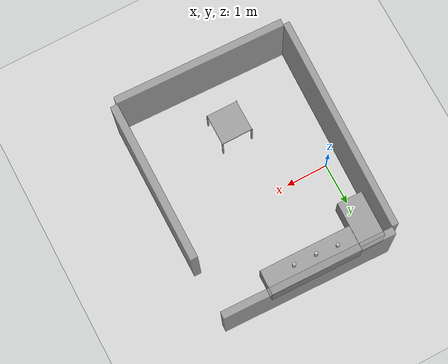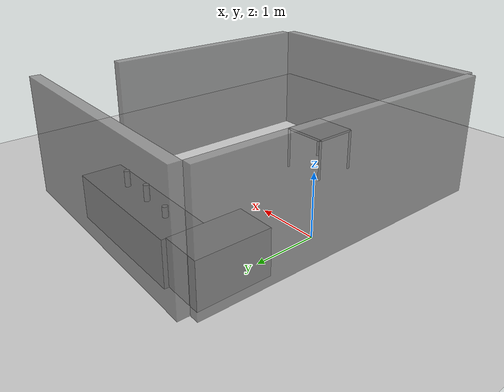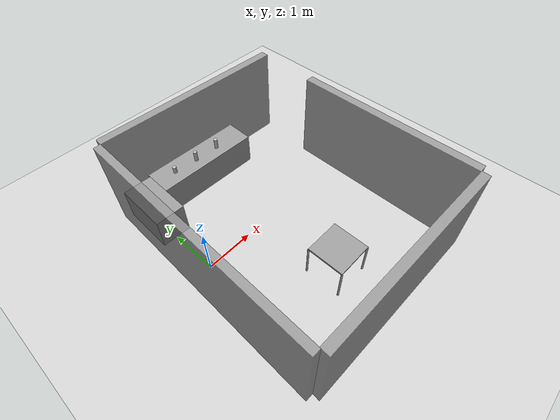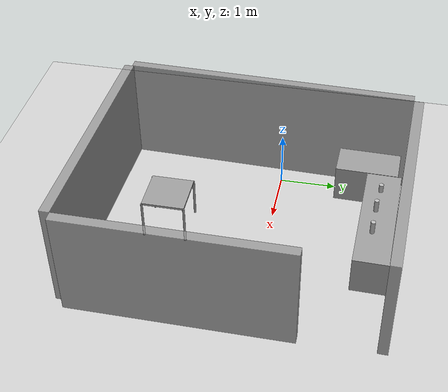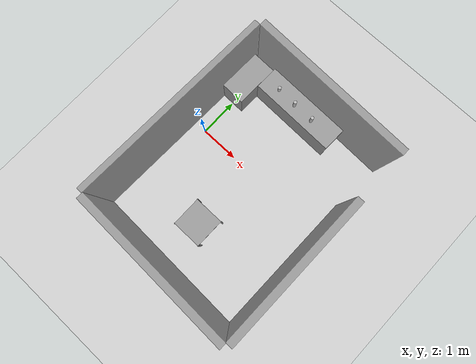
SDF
<sdf version="1.7">
 <world name="default">
  <physics type="ode">
   <ode>
    <solver>
     <type>quick</type>
     <iters>50</iters>
     <sor>1.4</sor>
     <use_dynamic_moi_rescaling>0</use_dynamic_moi_rescaling>
    </solver>
    <constraints>
     <cfm>0</cfm>
     <erp>0.2</erp>
     <contact_max_correcting_vel>100</contact_max_correcting_vel>
     <contact_surface_layer>0</contact_surface_layer>
    </constraints>
   </ode>
   <real_time_update_rate>1000</real_time_update_rate>
   <max_step_size>0.001</max_step_size>
   <real_time_factor>1</real_time_factor>
  </physics>
  <light name="sun" type="directional">
   <pose>0 0 8 0 -0 0</pose>
   <diffuse>0.8 0.8 0.8 1</diffuse>
   <specular>0.2 0.2 0.2 1</specular>
   <attenuation>
    <range>1000</range>
    <constant>0.9</constant>
    <linear>0.01</linear>
    <quadratic>0.001</quadratic>
   </attenuation>
   <direction>-0.5 0.1 -0.9</direction>
   <spot><inner_angle>0</inner_angle><outer_angle>0</outer_angle><falloff>0</falloff></spot>
  </light>
  <light name="ceiling_light" type="point">
   <pose>1.57075 -1.6124 1 0 -0 0</pose>
   <diffuse>0.5 0.5 0.5 1</diffuse>
   <specular>0.1 0.1 0.1 1</specular>
   <attenuation>
    <range>20</range>
    <constant>0.25</constant>
    <linear>0.01</linear>
    <quadratic>0.001</quadratic>
   </attenuation>
   <cast_shadows>0</cast_shadows>
   <direction>0 0 -1</direction>
  </light>
  <model name="ground_plane">
   <static>1</static>
   <link name="link">
    <collision name="collision">
     <geometry><plane><normal>0 0 1</normal><size>100 100</size></plane></geometry>
     <surface>
      <contact><collide_bitmask>65535</collide_bitmask></contact>
      <friction><ode><mu>100</mu><mu2>50</mu2></ode></friction>
     </surface>
    </collision>
    <visual name="visual">
     <cast_shadows>0</cast_shadows>
     <geometry><plane><normal>0 0 1</normal><size>100 100</size></plane></geometry>
     <material>
      <script><uri>file://media/materials/scripts/gazebo.material</uri><name>Gazebo/Grey</name></script>
     </material>
    </visual>
   </link>
  </model>
  <gravity>0 0 -9.81</gravity>
  <magnetic_field>6e-06 2.3e-05 -4.2e-05</magnetic_field>
  <atmosphere type="adiabatic"/>
  <scene><ambient>0.4 0.4 0.4 1</ambient><background>0.7 0.7 0.7 1</background><shadows>1</shadows></scene>
  <spherical_coordinates>
   <surface_model>EARTH_WGS84</surface_model>
   <latitude_deg>0</latitude_deg>
   <longitude_deg>0</longitude_deg>
   <elevation>0</elevation>
   <heading_deg>0</heading_deg>
  </spherical_coordinates>
  <model name="wall_north">
   <link name="link">
    <collision name="collision"><geometry><box><size>4.06296 0.169561 1.93007</size></box></geometry></collision>
    <gravity>0</gravity>
    <inertial>
     <mass>1</mass>
     <inertia>
      <ixx>0.166667</ixx>
      <ixy>0</ixy>
      <ixz>0</ixz>
      <iyy>0.166667</iyy>
      <iyz>0</iyz>
      <izz>0.166667</izz>
     </inertia>
    </inertial>
    <visual name="visual">
     <geometry><box><size>4.06296 0.169561 1.93007</size></box></geometry>
     <material>
      <script><name>Gazebo/Grey</name><uri>file://media/materials/scripts/gazebo.material</uri></script>
     </material>
     <transparency>0.15</transparency>
    </visual>
   </link>
   <pose>1.62874 -2.988 0.964658 6e-06 -0.000187 -0.029134</pose>
   <static>1</static>
  </model>
  <model name="wall_east">
   <link name="link">
    <collision name="collision"><geometry><box><size>0.144178 5.10072 1.93634</size></box></geometry></collision>
    <gravity>0</gravity>
    <inertial>
     <mass>1.42401</mass>
     <inertia><ixx>3.53234</ixx><ixy>0</ixy><ixz>0</ixz><iyy>0.447399</iyy><iyz>0</iyz><izz>3.08987</izz></inertia>
    </inertial>
    <visual name="visual">
     <geometry><box><size>0.144178 5.10072 1.93634</size></box></geometry>
     <material>
      <script><name>Gazebo/Grey</name><uri>file://media/materials/scripts/gazebo.material</uri></script>
     </material>
     <transparency>0.15</transparency>
    </visual>
   </link>
   <pose>-0.409741 -0.318763 0.966801 -0.000537 -1.4e-05 -0.0256</pose>
   <static>1</static>
  </model>
  <model name="wall_south">
   <link name="link">
    <collision name="collision"><geometry><box><size>4.06296 0.169561 1.93007</size></box></geometry></collision>
    <gravity>0</gravity>
    <inertial>
     <mass>1</mass>
     <inertia>
      <ixx>0.166667</ixx>
      <ixy>0</ixy>
      <ixz>0</ixz>
      <iyy>0.166667</iyy>
      <iyz>0</iyz>
      <izz>0.166667</izz>
     </inertia>
    </inertial>
    <visual name="visual">
     <geometry><box><size>4.06296 0.169561 1.93007</size></box></geometry>
     <material>
      <script><name>Gazebo/Grey</name><uri>file://media/materials/scripts/gazebo.material</uri></script>
     </material>
     <transparency>0.15</transparency>
    </visual>
   </link>
   <pose>1.76491 2.25747 0.964658 6e-06 -0.000187 -0.029134</pose>
   <static>1</static>
  </model>
  <model name="wall_west">
   <link name="link">
    <collision name="collision"><geometry><box><size>0.169301 3.81388 1.92589</size></box></geometry></collision>
    <gravity>0</gravity>
    <inertial>
     <mass>1</mass>
     <inertia>
      <ixx>0.166667</ixx>
      <ixy>0</ixy>
      <ixz>0</ixz>
      <iyy>0.166667</iyy>
      <iyz>0</iyz>
      <izz>0.166667</izz>
     </inertia>
    </inertial>
    <visual name="visual">
     <geometry><box><size>0.169301 3.81388 1.92589</size></box></geometry>
     <material>
      <script><name>Gazebo/Grey</name><uri>file://media/materials/scripts/gazebo.material</uri></script>
     </material>
     <transparency>0.15</transparency>
    </visual>
   </link>
   <pose>3.74483 -1.0514 0.962688 0.000135 4e-06 -0.004423</pose>
   <static>1</static>
  </model>
  <model name="clearing_table">
   <pose>0.018131 1.58035 0.34748 8.8e-05 -0.000457 -1.591</pose>
   <link name="link">
    <inertial>
     <mass>1</mass>
     <inertia>
      <ixx>0.166667</ixx>
      <ixy>0</ixy>
      <ixz>0</ixz>
      <iyy>0.166667</iyy>
      <iyz>0</iyz>
      <izz>0.166667</izz>
     </inertia>
    </inertial>
    <collision name="collision"><geometry><box><size>1.10998 0.608258 0.693943</size></box></geometry></collision>
    <visual name="visual">
     <geometry><box><size>1.10998 0.608258 0.693943</size></box></geometry>
     <material>
      <script><name>Gazebo/Grey</name><uri>file://media/materials/scripts/gazebo.material</uri></script>
     </material>
    </visual>
   </link>
  </model>
  <model name="dining_table">
   <static>1</static>
   <link name="link">
    <collision name="surface">
     <pose>0 0 0.72 0 -0 0</pose>
     <geometry><box><size>0.75 0.75 0.04</size></box></geometry>
    </collision>
    <visual name="visual1">
     <pose>0 0 0.72 0 -0 0</pose>
     <geometry><box><size>0.75 0.75 0.04</size></box></geometry>
     <material>
      <script><uri>file://media/materials/scripts/gazebo.material</uri><name>Gazebo/Grey</name></script>
     </material>
    </visual>
    <collision name="front_left_leg">
     <pose>0.37 0.37 0.36 0 -0 0</pose>
     <geometry><cylinder><radius>0.02</radius><length>0.72</length></cylinder></geometry>
    </collision>
    <visual name="front_left_leg">
     <pose>0.37 0.37 0.36 0 -0 0</pose>
     <geometry><cylinder><radius>0.02</radius><length>0.72</length></cylinder></geometry>
     <material>
      <script><uri>file://media/materials/scripts/gazebo.material</uri><name>Gazebo/Grey</name></script>
     </material>
    </visual>
    <collision name="front_right_leg">
     <pose>0.37 -0.37 0.36 0 -0 0</pose>
     <geometry><cylinder><radius>0.02</radius><length>0.72</length></cylinder></geometry>
    </collision>
    <visual name="front_right_leg">
     <pose>0.37 -0.37 0.36 0 -0 0</pose>
     <geometry><cylinder><radius>0.02</radius><length>0.72</length></cylinder></geometry>
     <material>
      <script><uri>file://media/materials/scripts/gazebo.material</uri><name>Gazebo/Grey</name></script>
     </material>
    </visual>
    <collision name="back_right_leg">
     <pose>-0.37 -0.37 0.36 0 -0 0</pose>
     <geometry><cylinder><radius>0.02</radius><length>0.72</length></cylinder></geometry>
    </collision>
    <visual name="back_right_leg">
     <pose>-0.37 -0.37 0.36 0 -0 0</pose>
     <geometry><cylinder><radius>0.02</radius><length>0.72</length></cylinder></geometry>
     <material>
      <script><uri>file://media/materials/scripts/gazebo.material</uri><name>Gazebo/Grey</name></script>
     </material>
    </visual>
    <collision name="back_left_leg">
     <pose>-0.37 0.37 0.36 0 -0 0</pose>
     <geometry><cylinder><radius>0.02</radius><length>0.72</length></cylinder></geometry>
    </collision>
    <visual name="back_left_leg">
     <pose>-0.37 0.37 0.36 0 -0 0</pose>
     <geometry><cylinder><radius>0.02</radius><length>0.72</length></cylinder></geometry>
     <material>
      <script><uri>file://media/materials/scripts/gazebo.material</uri><name>Gazebo/Grey</name></script>
     </material>
    </visual>
    <velocity_decay><linear>0</linear><angular>0</angular></velocity_decay>
   </link>
   <pose>1.55589 -1.75716 0 0 -0 0</pose>
  </model>
  <model name="kitchen_table">
   <pose>1.44096 1.86787 0.342251 0.000407 0.000539 -0.020192</pose>
   <link name="link">
    <inertial>
     <mass>1</mass>
     <inertia>
      <ixx>0.166667</ixx>
      <ixy>0</ixy>
      <ixz>0</ixz>
      <iyy>0.166667</iyy>
      <iyz>0</iyz>
      <izz>0.166667</izz>
     </inertia>
    </inertial>
    <collision name="collision"><geometry><box><size>2.22521 0.608258 0.689802</size></box></geometry></collision>
    <visual name="visual">
     <geometry><box><size>2.22521 0.608258 0.689802</size></box></geometry>
     <material>
      <script><name>Gazebo/Grey</name><uri>file://media/materials/scripts/gazebo.material</uri></script>
     </material>
    </visual>
   </link>
  </model>
  <model name="cocacola">
   <static>0</static>
   <link name="link">
    <inertial>
     <mass>0.25</mass>
     <inertia><ixx>0</ixx><ixy>0</ixy><ixz>0</ixz><iyy>0</iyy><iyz>0</iyz><izz>0</izz></inertia>
    </inertial>
    <collision name="collision">
     <pose>0 0 0.075 -3.14159 -0 0</pose>
     <geometry><cylinder><radius>0.04</radius><length>0.15</length></cylinder></geometry>
    </collision>
    <visual name="visual">
     <pose>0 0 0.075 -3.14159 -0 0</pose>
     <geometry><cylinder><radius>0.04</radius><length>0.15</length></cylinder></geometry>
     <material>
      <script>
       <uri>model://cocacola/material/scripts</uri>
       <uri>model://cocacola/material/textures</uri>
       <name>Custom/cocacola</name>
      </script>
     </material>
    </visual>
    <velocity_decay><linear>0</linear><angular>0</angular></velocity_decay>
   </link>
   <pose>0.770174 1.85967 0.687516 6.6e-05 5e-06 0.004714</pose>
  </model>
  <model name="pringles">
   <static>0</static>
   <link name="link">
    <inertial>
     <mass>0.25</mass>
     <inertia><ixx>0</ixx><ixy>0</ixy><ixz>0</ixz><iyy>0</iyy><iyz>0</iyz><izz>0</izz></inertia>
    </inertial>
    <collision name="collision">
     <geometry><cylinder><radius>0.04</radius><length>0.235</length></cylinder></geometry>
    </collision>
    <visual name="visual">
     <geometry><cylinder><radius>0.04</radius><length>0.235</length></cylinder></geometry>
     <material>
      <script>
       <uri>model://pringles/material/scripts</uri>
       <uri>model://pringles/material/textures</uri>
       <name>Custom/pringles</name>
      </script>
     </material>
    </visual>
    <velocity_decay><linear>0</linear><angular>0</angular></velocity_decay>
   </link>
   <pose>1.83595 1.802 0.804411 0.000302 0.000853 -0.006091</pose>
  </model>
  <model name="pringles2">
   <static>0</static>
   <link name="link">
    <inertial>
     <mass>0.25</mass>
     <inertia><ixx>0</ixx><ixy>0</ixy><ixz>0</ixz><iyy>0</iyy><iyz>0</iyz><izz>0</izz></inertia>
    </inertial>
    <collision name="collision">
     <pose>0 0 0.12 -3.14159 -0 0</pose>
     <geometry><cylinder><radius>0.04</radius><length>0.235</length></cylinder></geometry>
    </collision>
    <visual name="visual">
     <pose>0 0 0.12 -3.14159 -0 0</pose>
     <geometry><cylinder><radius>0.04</radius><length>0.235</length></cylinder></geometry>
     <material>
      <script>
       <uri>model://pringles2/material/scripts</uri>
       <uri>model://pringles2/material/textures</uri>
       <name>Custom/pringles2</name>
      </script>
     </material>
    </visual>
    <velocity_decay><linear>0</linear><angular>0</angular></velocity_decay>
   </link>
   <pose>1.29114 1.81691 0.684704 0.000442 0.000765 -0.014316</pose>
  </model>
 </world>
</sdf>
